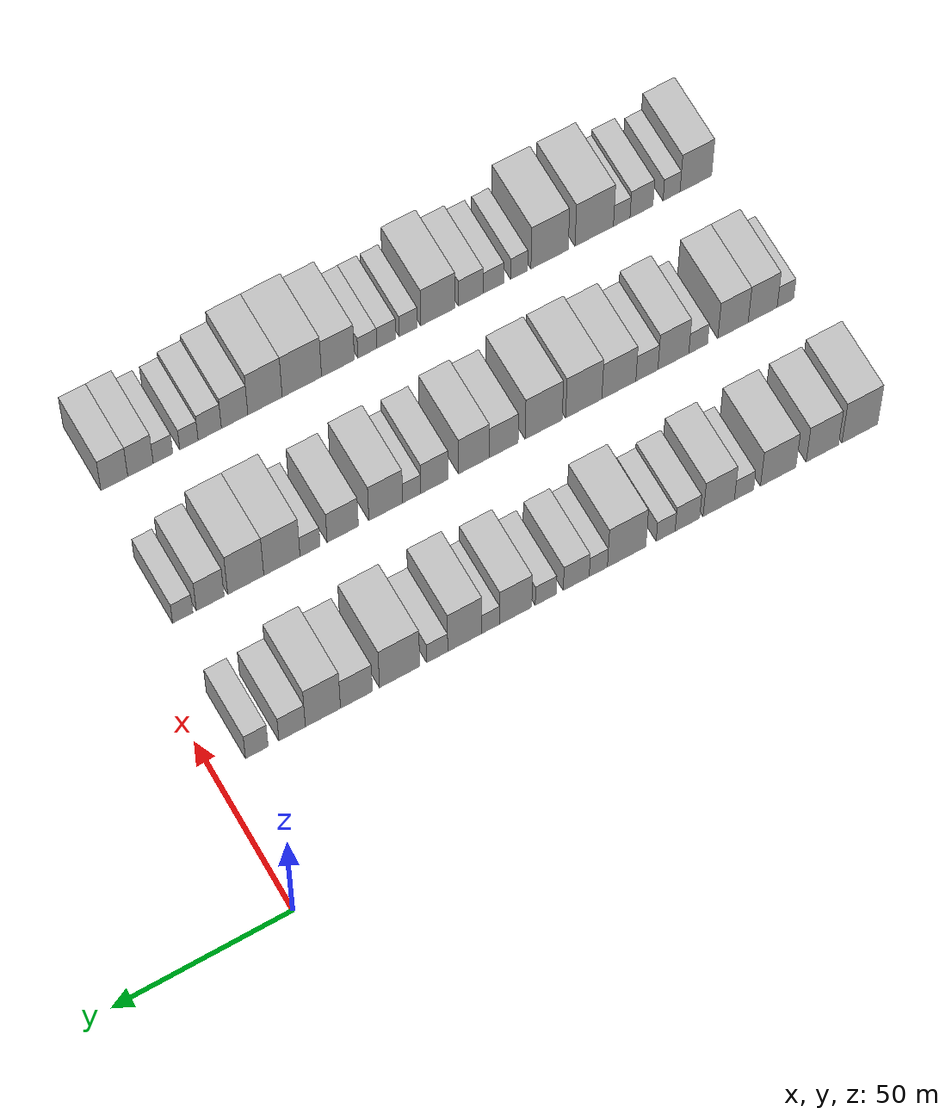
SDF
<sdf version="1.6">
 <world name="default">
  <model name="building_25">
   <static>1</static>
   <pose>50.0000 -183.6982 0 0.000000 0.000000 0.000000</pose>
   <link name="link">
    <pose>0 0 12.00 0 0 0</pose>
    <collision name="collision"><geometry><box><size>20.0000 10.4094 24.0000</size></box></geometry></collision>
    <visual name="visual">
     <cast_shadows>0</cast_shadows>
     <geometry><box><size>20.0000 10.4094 24.0000</size></box></geometry>
     <material>
      <script>
       <uri>model://HANNAS_wall/materials/scripts</uri>
       <uri>model://HANNAS_wall/materials/textures</uri>
       <name>vrc/HANNAS_wall</name>
      </script>
     </material>
    </visual>
   </link>
  </model>
  <model name="building_26">
   <static>1</static>
   <pose>50.0000 -172.7944 0 0.000000 0.000000 0.000000</pose>
   <link name="link">
    <pose>0 0 10.50 0 0 0</pose>
    <collision name="collision"><geometry><box><size>20.0000 9.3983 21.0000</size></box></geometry></collision>
    <visual name="visual">
     <cast_shadows>0</cast_shadows>
     <geometry><box><size>20.0000 9.3983 21.0000</size></box></geometry>
     <material>
      <script>
       <uri>model://HANNAS_wall/materials/scripts</uri>
       <uri>model://HANNAS_wall/materials/textures</uri>
       <name>vrc/HANNAS_wall</name>
      </script>
     </material>
    </visual>
   </link>
  </model>
  <model name="building_27">
   <static>1</static>
   <pose>50.0000 -159.9652 0 0.000000 0.000000 0.000000</pose>
   <link name="link">
    <pose>0 0 10.50 0 0 0</pose>
    <collision name="collision"><geometry><box><size>20.0000 10.2600 21.0000</size></box></geometry></collision>
    <visual name="visual">
     <cast_shadows>0</cast_shadows>
     <geometry><box><size>20.0000 10.2600 21.0000</size></box></geometry>
     <material>
      <script>
       <uri>model://HANNAS_wall/materials/scripts</uri>
       <uri>model://HANNAS_wall/materials/textures</uri>
       <name>vrc/HANNAS_wall</name>
      </script>
     </material>
    </visual>
   </link>
  </model>
  <model name="building_28">
   <static>1</static>
   <pose>50.0000 -150.0657 0 0.000000 0.000000 0.000000</pose>
   <link name="link">
    <pose>0 0 6.00 0 0 0</pose>
    <collision name="collision"><geometry><box><size>20.0000 5.5390 12.0000</size></box></geometry></collision>
    <visual name="visual">
     <cast_shadows>0</cast_shadows>
     <geometry><box><size>20.0000 5.5390 12.0000</size></box></geometry>
     <material>
      <script>
       <uri>model://HANNAS_wall/materials/scripts</uri>
       <uri>model://HANNAS_wall/materials/textures</uri>
       <name>vrc/HANNAS_wall</name>
      </script>
     </material>
    </visual>
   </link>
  </model>
  <model name="building_29">
   <static>1</static>
   <pose>50.0000 -142.7747 0 0.000000 0.000000 0.000000</pose>
   <link name="link">
    <pose>0 0 10.50 0 0 0</pose>
    <collision name="collision"><geometry><box><size>20.0000 9.0430 21.0000</size></box></geometry></collision>
    <visual name="visual">
     <cast_shadows>0</cast_shadows>
     <geometry><box><size>20.0000 9.0430 21.0000</size></box></geometry>
     <material>
      <script>
       <uri>model://HANNAS_wall/materials/scripts</uri>
       <uri>model://HANNAS_wall/materials/textures</uri>
       <name>vrc/HANNAS_wall</name>
      </script>
     </material>
    </visual>
   </link>
  </model>
  <model name="building_30">
   <static>1</static>
   <pose>50.0000 -133.7308 0 0.000000 0.000000 0.000000</pose>
   <link name="link">
    <pose>0 0 7.50 0 0 0</pose>
    <collision name="collision"><geometry><box><size>20.0000 7.0449 15.0000</size></box></geometry></collision>
    <visual name="visual">
     <cast_shadows>0</cast_shadows>
     <geometry><box><size>20.0000 7.0449 15.0000</size></box></geometry>
     <material>
      <script>
       <uri>model://HANNAS_wall/materials/scripts</uri>
       <uri>model://HANNAS_wall/materials/textures</uri>
       <name>vrc/HANNAS_wall</name>
      </script>
     </material>
    </visual>
   </link>
  </model>
  <model name="building_31">
   <static>1</static>
   <pose>50.0000 -127.4905 0 0.000000 0.000000 0.000000</pose>
   <link name="link">
    <pose>0 0 6.00 0 0 0</pose>
    <collision name="collision"><geometry><box><size>20.0000 5.4356 12.0000</size></box></geometry></collision>
    <visual name="visual">
     <cast_shadows>0</cast_shadows>
     <geometry><box><size>20.0000 5.4356 12.0000</size></box></geometry>
     <material>
      <script>
       <uri>model://HANNAS_wall/materials/scripts</uri>
       <uri>model://HANNAS_wall/materials/textures</uri>
       <name>vrc/HANNAS_wall</name>
      </script>
     </material>
    </visual>
   </link>
  </model>
  <model name="building_32">
   <static>1</static>
   <pose>50.0000 -116.2750 0 0.000000 0.000000 0.000000</pose>
   <link name="link">
    <pose>0 0 12.00 0 0 0</pose>
    <collision name="collision"><geometry><box><size>20.0000 10.9953 24.0000</size></box></geometry></collision>
    <visual name="visual">
     <cast_shadows>0</cast_shadows>
     <geometry><box><size>20.0000 10.9953 24.0000</size></box></geometry>
     <material>
      <script>
       <uri>model://HANNAS_wall/materials/scripts</uri>
       <uri>model://HANNAS_wall/materials/textures</uri>
       <name>vrc/HANNAS_wall</name>
      </script>
     </material>
    </visual>
   </link>
  </model>
  <model name="building_33">
   <static>1</static>
   <pose>50.0000 -108.1830 0 0.000000 0.000000 0.000000</pose>
   <link name="link">
    <pose>0 0 6.00 0 0 0</pose>
    <collision name="collision"><geometry><box><size>20.0000 5.1889 12.0000</size></box></geometry></collision>
    <visual name="visual">
     <cast_shadows>0</cast_shadows>
     <geometry><box><size>20.0000 5.1889 12.0000</size></box></geometry>
     <material>
      <script>
       <uri>model://HANNAS_wall/materials/scripts</uri>
       <uri>model://HANNAS_wall/materials/textures</uri>
       <name>vrc/HANNAS_wall</name>
      </script>
     </material>
    </visual>
   </link>
  </model>
  <model name="building_34">
   <static>1</static>
   <pose>50.0000 -101.8819 0 0.000000 0.000000 0.000000</pose>
   <link name="link">
    <pose>0 0 7.50 0 0 0</pose>
    <collision name="collision"><geometry><box><size>20.0000 7.4133 15.0000</size></box></geometry></collision>
    <visual name="visual">
     <cast_shadows>0</cast_shadows>
     <geometry><box><size>20.0000 7.4133 15.0000</size></box></geometry>
     <material>
      <script>
       <uri>model://HANNAS_wall/materials/scripts</uri>
       <uri>model://HANNAS_wall/materials/textures</uri>
       <name>vrc/HANNAS_wall</name>
      </script>
     </material>
    </visual>
   </link>
  </model>
  <model name="building_35">
   <static>1</static>
   <pose>50.0000 -93.1847 0 0.000000 0.000000 0.000000</pose>
   <link name="link">
    <pose>0 0 6.00 0 0 0</pose>
    <collision name="collision"><geometry><box><size>20.0000 5.9812 12.0000</size></box></geometry></collision>
    <visual name="visual">
     <cast_shadows>0</cast_shadows>
     <geometry><box><size>20.0000 5.9812 12.0000</size></box></geometry>
     <material>
      <script>
       <uri>model://HANNAS_wall/materials/scripts</uri>
       <uri>model://HANNAS_wall/materials/textures</uri>
       <name>vrc/HANNAS_wall</name>
      </script>
     </material>
    </visual>
   </link>
  </model>
  <model name="building_36">
   <static>1</static>
   <pose>50.0000 -84.6144 0 0.000000 0.000000 0.000000</pose>
   <link name="link">
    <pose>0 0 10.50 0 0 0</pose>
    <collision name="collision"><geometry><box><size>20.0000 9.1593 21.0000</size></box></geometry></collision>
    <visual name="visual">
     <cast_shadows>0</cast_shadows>
     <geometry><box><size>20.0000 9.1593 21.0000</size></box></geometry>
     <material>
      <script>
       <uri>model://HANNAS_wall/materials/scripts</uri>
       <uri>model://HANNAS_wall/materials/textures</uri>
       <name>vrc/HANNAS_wall</name>
      </script>
     </material>
    </visual>
   </link>
  </model>
  <model name="building_37">
   <static>1</static>
   <pose>50.0000 -77.5212 0 0.000000 0.000000 0.000000</pose>
   <link name="link">
    <pose>0 0 6.00 0 0 0</pose>
    <collision name="collision"><geometry><box><size>20.0000 5.0271 12.0000</size></box></geometry></collision>
    <visual name="visual">
     <cast_shadows>0</cast_shadows>
     <geometry><box><size>20.0000 5.0271 12.0000</size></box></geometry>
     <material>
      <script>
       <uri>model://HANNAS_wall/materials/scripts</uri>
       <uri>model://HANNAS_wall/materials/textures</uri>
       <name>vrc/HANNAS_wall</name>
      </script>
     </material>
    </visual>
   </link>
  </model>
  <model name="building_38">
   <static>1</static>
   <pose>50.0000 -70.1932 0 0.000000 0.000000 0.000000</pose>
   <link name="link">
    <pose>0 0 12.00 0 0 0</pose>
    <collision name="collision"><geometry><box><size>20.0000 9.6289 24.0000</size></box></geometry></collision>
    <visual name="visual">
     <cast_shadows>0</cast_shadows>
     <geometry><box><size>20.0000 9.6289 24.0000</size></box></geometry>
     <material>
      <script>
       <uri>model://HANNAS_wall/materials/scripts</uri>
       <uri>model://HANNAS_wall/materials/textures</uri>
       <name>vrc/HANNAS_wall</name>
      </script>
     </material>
    </visual>
   </link>
  </model>
  <model name="building_39">
   <static>1</static>
   <pose>50.0000 -62.4221 0 0.000000 0.000000 0.000000</pose>
   <link name="link">
    <pose>0 0 6.00 0 0 0</pose>
    <collision name="collision"><geometry><box><size>20.0000 5.9132 12.0000</size></box></geometry></collision>
    <visual name="visual">
     <cast_shadows>0</cast_shadows>
     <geometry><box><size>20.0000 5.9132 12.0000</size></box></geometry>
     <material>
      <script>
       <uri>model://HANNAS_wall/materials/scripts</uri>
       <uri>model://HANNAS_wall/materials/textures</uri>
       <name>vrc/HANNAS_wall</name>
      </script>
     </material>
    </visual>
   </link>
  </model>
  <model name="building_40">
   <static>1</static>
   <pose>50.0000 -51.8165 0 0.000000 0.000000 0.000000</pose>
   <link name="link">
    <pose>0 0 12.00 0 0 0</pose>
    <collision name="collision"><geometry><box><size>20.0000 11.2980 24.0000</size></box></geometry></collision>
    <visual name="visual">
     <cast_shadows>0</cast_shadows>
     <geometry><box><size>20.0000 11.2980 24.0000</size></box></geometry>
     <material>
      <script>
       <uri>model://HANNAS_wall/materials/scripts</uri>
       <uri>model://HANNAS_wall/materials/textures</uri>
       <name>vrc/HANNAS_wall</name>
      </script>
     </material>
    </visual>
   </link>
  </model>
  <model name="building_41">
   <static>1</static>
   <pose>50.0000 -39.6942 0 0.000000 0.000000 0.000000</pose>
   <link name="link">
    <pose>0 0 9.00 0 0 0</pose>
    <collision name="collision"><geometry><box><size>20.0000 8.9466 18.0000</size></box></geometry></collision>
    <visual name="visual">
     <cast_shadows>0</cast_shadows>
     <geometry><box><size>20.0000 8.9466 18.0000</size></box></geometry>
     <material>
      <script>
       <uri>model://HANNAS_wall/materials/scripts</uri>
       <uri>model://HANNAS_wall/materials/textures</uri>
       <name>vrc/HANNAS_wall</name>
      </script>
     </material>
    </visual>
   </link>
  </model>
  <model name="building_42">
   <static>1</static>
   <pose>50.0000 -30.3065 0 0.000000 0.000000 0.000000</pose>
   <link name="link">
    <pose>0 0 12.00 0 0 0</pose>
    <collision name="collision"><geometry><box><size>20.0000 9.8288 24.0000</size></box></geometry></collision>
    <visual name="visual">
     <cast_shadows>0</cast_shadows>
     <geometry><box><size>20.0000 9.8288 24.0000</size></box></geometry>
     <material>
      <script>
       <uri>model://HANNAS_wall/materials/scripts</uri>
       <uri>model://HANNAS_wall/materials/textures</uri>
       <name>vrc/HANNAS_wall</name>
      </script>
     </material>
    </visual>
   </link>
  </model>
  <model name="building_43">
   <static>1</static>
   <pose>50.0000 -21.6989 0 0.000000 0.000000 0.000000</pose>
   <link name="link">
    <pose>0 0 7.50 0 0 0</pose>
    <collision name="collision"><geometry><box><size>20.0000 7.3866 15.0000</size></box></geometry></collision>
    <visual name="visual">
     <cast_shadows>0</cast_shadows>
     <geometry><box><size>20.0000 7.3866 15.0000</size></box></geometry>
     <material>
      <script>
       <uri>model://HANNAS_wall/materials/scripts</uri>
       <uri>model://HANNAS_wall/materials/textures</uri>
       <name>vrc/HANNAS_wall</name>
      </script>
     </material>
    </visual>
   </link>
  </model>
  <model name="building_44">
   <static>1</static>
   <pose>50.0000 -11.8551 0 0.000000 0.000000 0.000000</pose>
   <link name="link">
    <pose>0 0 7.50 0 0 0</pose>
    <collision name="collision"><geometry><box><size>20.0000 6.3010 15.0000</size></box></geometry></collision>
    <visual name="visual">
     <cast_shadows>0</cast_shadows>
     <geometry><box><size>20.0000 6.3010 15.0000</size></box></geometry>
     <material>
      <script>
       <uri>model://HANNAS_wall/materials/scripts</uri>
       <uri>model://HANNAS_wall/materials/textures</uri>
       <name>vrc/HANNAS_wall</name>
      </script>
     </material>
    </visual>
   </link>
  </model>
  <model name="building_106">
   <static>1</static>
   <pose>90.0000 -185.9245 0 0.000000 0.000000 0.000000</pose>
   <link name="link">
    <pose>0 0 6.00 0 0 0</pose>
    <collision name="collision"><geometry><box><size>20.0000 4.8356 12.0000</size></box></geometry></collision>
    <visual name="visual">
     <cast_shadows>0</cast_shadows>
     <geometry><box><size>20.0000 4.8356 12.0000</size></box></geometry>
     <material>
      <script>
       <uri>model://HANNAS_wall/materials/scripts</uri>
       <uri>model://HANNAS_wall/materials/textures</uri>
       <name>vrc/HANNAS_wall</name>
      </script>
     </material>
    </visual>
   </link>
  </model>
  <model name="building_107">
   <static>1</static>
   <pose>90.0000 -179.2603 0 0.000000 0.000000 0.000000</pose>
   <link name="link">
    <pose>0 0 10.50 0 0 0</pose>
    <collision name="collision"><geometry><box><size>20.0000 8.4927 21.0000</size></box></geometry></collision>
    <visual name="visual">
     <cast_shadows>0</cast_shadows>
     <geometry><box><size>20.0000 8.4927 21.0000</size></box></geometry>
     <material>
      <script>
       <uri>model://HANNAS_wall/materials/scripts</uri>
       <uri>model://HANNAS_wall/materials/textures</uri>
       <name>vrc/HANNAS_wall</name>
      </script>
     </material>
    </visual>
   </link>
  </model>
  <model name="building_108">
   <static>1</static>
   <pose>90.0000 -170.5724 0 0.000000 0.000000 0.000000</pose>
   <link name="link">
    <pose>0 0 10.50 0 0 0</pose>
    <collision name="collision"><geometry><box><size>20.0000 8.8831 21.0000</size></box></geometry></collision>
    <visual name="visual">
     <cast_shadows>0</cast_shadows>
     <geometry><box><size>20.0000 8.8831 21.0000</size></box></geometry>
     <material>
      <script>
       <uri>model://HANNAS_wall/materials/scripts</uri>
       <uri>model://HANNAS_wall/materials/textures</uri>
       <name>vrc/HANNAS_wall</name>
      </script>
     </material>
    </visual>
   </link>
  </model>
  <model name="building_109">
   <static>1</static>
   <pose>90.0000 -160.3916 0 0.000000 0.000000 0.000000</pose>
   <link name="link">
    <pose>0 0 6.00 0 0 0</pose>
    <collision name="collision"><geometry><box><size>20.0000 5.4785 12.0000</size></box></geometry></collision>
    <visual name="visual">
     <cast_shadows>0</cast_shadows>
     <geometry><box><size>20.0000 5.4785 12.0000</size></box></geometry>
     <material>
      <script>
       <uri>model://HANNAS_wall/materials/scripts</uri>
       <uri>model://HANNAS_wall/materials/textures</uri>
       <name>vrc/HANNAS_wall</name>
      </script>
     </material>
    </visual>
   </link>
  </model>
  <model name="building_110">
   <static>1</static>
   <pose>90.0000 -153.1517 0 0.000000 0.000000 0.000000</pose>
   <link name="link">
    <pose>0 0 10.50 0 0 0</pose>
    <collision name="collision"><geometry><box><size>20.0000 9.0015 21.0000</size></box></geometry></collision>
    <visual name="visual">
     <cast_shadows>0</cast_shadows>
     <geometry><box><size>20.0000 9.0015 21.0000</size></box></geometry>
     <material>
      <script>
       <uri>model://HANNAS_wall/materials/scripts</uri>
       <uri>model://HANNAS_wall/materials/textures</uri>
       <name>vrc/HANNAS_wall</name>
      </script>
     </material>
    </visual>
   </link>
  </model>
  <model name="building_111">
   <static>1</static>
   <pose>90.0000 -145.4465 0 0.000000 0.000000 0.000000</pose>
   <link name="link">
    <pose>0 0 7.50 0 0 0</pose>
    <collision name="collision"><geometry><box><size>20.0000 6.4088 15.0000</size></box></geometry></collision>
    <visual name="visual">
     <cast_shadows>0</cast_shadows>
     <geometry><box><size>20.0000 6.4088 15.0000</size></box></geometry>
     <material>
      <script>
       <uri>model://HANNAS_wall/materials/scripts</uri>
       <uri>model://HANNAS_wall/materials/textures</uri>
       <name>vrc/HANNAS_wall</name>
      </script>
     </material>
    </visual>
   </link>
  </model>
  <model name="building_112">
   <static>1</static>
   <pose>90.0000 -137.3129 0 0.000000 0.000000 0.000000</pose>
   <link name="link">
    <pose>0 0 10.50 0 0 0</pose>
    <collision name="collision"><geometry><box><size>20.0000 9.8584 21.0000</size></box></geometry></collision>
    <visual name="visual">
     <cast_shadows>0</cast_shadows>
     <geometry><box><size>20.0000 9.8584 21.0000</size></box></geometry>
     <material>
      <script>
       <uri>model://HANNAS_wall/materials/scripts</uri>
       <uri>model://HANNAS_wall/materials/textures</uri>
       <name>vrc/HANNAS_wall</name>
      </script>
     </material>
    </visual>
   </link>
  </model>
  <model name="building_113">
   <static>1</static>
   <pose>90.0000 -127.1425 0 0.000000 0.000000 0.000000</pose>
   <link name="link">
    <pose>0 0 12.00 0 0 0</pose>
    <collision name="collision"><geometry><box><size>20.0000 10.4826 24.0000</size></box></geometry></collision>
    <visual name="visual">
     <cast_shadows>0</cast_shadows>
     <geometry><box><size>20.0000 10.4826 24.0000</size></box></geometry>
     <material>
      <script>
       <uri>model://HANNAS_wall/materials/scripts</uri>
       <uri>model://HANNAS_wall/materials/textures</uri>
       <name>vrc/HANNAS_wall</name>
      </script>
     </material>
    </visual>
   </link>
  </model>
  <model name="building_114">
   <static>1</static>
   <pose>90.0000 -115.5559 0 0.000000 0.000000 0.000000</pose>
   <link name="link">
    <pose>0 0 12.00 0 0 0</pose>
    <collision name="collision"><geometry><box><size>20.0000 10.6905 24.0000</size></box></geometry></collision>
    <visual name="visual">
     <cast_shadows>0</cast_shadows>
     <geometry><box><size>20.0000 10.6905 24.0000</size></box></geometry>
     <material>
      <script>
       <uri>model://HANNAS_wall/materials/scripts</uri>
       <uri>model://HANNAS_wall/materials/textures</uri>
       <name>vrc/HANNAS_wall</name>
      </script>
     </material>
    </visual>
   </link>
  </model>
  <model name="building_115">
   <static>1</static>
   <pose>90.0000 -104.0664 0 0.000000 0.000000 0.000000</pose>
   <link name="link">
    <pose>0 0 9.00 0 0 0</pose>
    <collision name="collision"><geometry><box><size>20.0000 8.2887 18.0000</size></box></geometry></collision>
    <visual name="visual">
     <cast_shadows>0</cast_shadows>
     <geometry><box><size>20.0000 8.2887 18.0000</size></box></geometry>
     <material>
      <script>
       <uri>model://HANNAS_wall/materials/scripts</uri>
       <uri>model://HANNAS_wall/materials/textures</uri>
       <name>vrc/HANNAS_wall</name>
      </script>
     </material>
    </visual>
   </link>
  </model>
  <model name="building_116">
   <static>1</static>
   <pose>90.0000 -95.5177 0 0.000000 0.000000 0.000000</pose>
   <link name="link">
    <pose>0 0 10.50 0 0 0</pose>
    <collision name="collision"><geometry><box><size>20.0000 8.8087 21.0000</size></box></geometry></collision>
    <visual name="visual">
     <cast_shadows>0</cast_shadows>
     <geometry><box><size>20.0000 8.8087 21.0000</size></box></geometry>
     <material>
      <script>
       <uri>model://HANNAS_wall/materials/scripts</uri>
       <uri>model://HANNAS_wall/materials/textures</uri>
       <name>vrc/HANNAS_wall</name>
      </script>
     </material>
    </visual>
   </link>
  </model>
  <model name="building_117">
   <static>1</static>
   <pose>90.0000 -84.2253 0 0.000000 0.000000 0.000000</pose>
   <link name="link">
    <pose>0 0 9.00 0 0 0</pose>
    <collision name="collision"><geometry><box><size>20.0000 7.7761 18.0000</size></box></geometry></collision>
    <visual name="visual">
     <cast_shadows>0</cast_shadows>
     <geometry><box><size>20.0000 7.7761 18.0000</size></box></geometry>
     <material>
      <script>
       <uri>model://HANNAS_wall/materials/scripts</uri>
       <uri>model://HANNAS_wall/materials/textures</uri>
       <name>vrc/HANNAS_wall</name>
      </script>
     </material>
    </visual>
   </link>
  </model>
  <model name="building_118">
   <static>1</static>
   <pose>90.0000 -77.7504 0 0.000000 0.000000 0.000000</pose>
   <link name="link">
    <pose>0 0 6.00 0 0 0</pose>
    <collision name="collision"><geometry><box><size>20.0000 5.1737 12.0000</size></box></geometry></collision>
    <visual name="visual">
     <cast_shadows>0</cast_shadows>
     <geometry><box><size>20.0000 5.1737 12.0000</size></box></geometry>
     <material>
      <script>
       <uri>model://HANNAS_wall/materials/scripts</uri>
       <uri>model://HANNAS_wall/materials/textures</uri>
       <name>vrc/HANNAS_wall</name>
      </script>
     </material>
    </visual>
   </link>
  </model>
  <model name="building_119">
   <static>1</static>
   <pose>90.0000 -70.3456 0 0.000000 0.000000 0.000000</pose>
   <link name="link">
    <pose>0 0 10.50 0 0 0</pose>
    <collision name="collision"><geometry><box><size>20.0000 9.6360 21.0000</size></box></geometry></collision>
    <visual name="visual">
     <cast_shadows>0</cast_shadows>
     <geometry><box><size>20.0000 9.6360 21.0000</size></box></geometry>
     <material>
      <script>
       <uri>model://HANNAS_wall/materials/scripts</uri>
       <uri>model://HANNAS_wall/materials/textures</uri>
       <name>vrc/HANNAS_wall</name>
      </script>
     </material>
    </visual>
   </link>
  </model>
  <model name="building_120">
   <static>1</static>
   <pose>90.0000 -58.0974 0 0.000000 0.000000 0.000000</pose>
   <link name="link">
    <pose>0 0 9.00 0 0 0</pose>
    <collision name="collision"><geometry><box><size>20.0000 8.8603 18.0000</size></box></geometry></collision>
    <visual name="visual">
     <cast_shadows>0</cast_shadows>
     <geometry><box><size>20.0000 8.8603 18.0000</size></box></geometry>
     <material>
      <script>
       <uri>model://HANNAS_wall/materials/scripts</uri>
       <uri>model://HANNAS_wall/materials/textures</uri>
       <name>vrc/HANNAS_wall</name>
      </script>
     </material>
    </visual>
   </link>
  </model>
  <model name="building_121">
   <static>1</static>
   <pose>90.0000 -48.8310 0 0.000000 0.000000 0.000000</pose>
   <link name="link">
    <pose>0 0 6.00 0 0 0</pose>
    <collision name="collision"><geometry><box><size>20.0000 5.6724 12.0000</size></box></geometry></collision>
    <visual name="visual">
     <cast_shadows>0</cast_shadows>
     <geometry><box><size>20.0000 5.6724 12.0000</size></box></geometry>
     <material>
      <script>
       <uri>model://HANNAS_wall/materials/scripts</uri>
       <uri>model://HANNAS_wall/materials/textures</uri>
       <name>vrc/HANNAS_wall</name>
      </script>
     </material>
    </visual>
   </link>
  </model>
  <model name="building_122">
   <static>1</static>
   <pose>90.0000 -40.8787 0 0.000000 0.000000 0.000000</pose>
   <link name="link">
    <pose>0 0 12.00 0 0 0</pose>
    <collision name="collision"><geometry><box><size>20.0000 10.2322 24.0000</size></box></geometry></collision>
    <visual name="visual">
     <cast_shadows>0</cast_shadows>
     <geometry><box><size>20.0000 10.2322 24.0000</size></box></geometry>
     <material>
      <script>
       <uri>model://HANNAS_wall/materials/scripts</uri>
       <uri>model://HANNAS_wall/materials/textures</uri>
       <name>vrc/HANNAS_wall</name>
      </script>
     </material>
    </visual>
   </link>
  </model>
  <model name="building_123">
   <static>1</static>
   <pose>90.0000 -30.6779 0 0.000000 0.000000 0.000000</pose>
   <link name="link">
    <pose>0 0 12.00 0 0 0</pose>
    <collision name="collision"><geometry><box><size>20.0000 10.1693 24.0000</size></box></geometry></collision>
    <visual name="visual">
     <cast_shadows>0</cast_shadows>
     <geometry><box><size>20.0000 10.1693 24.0000</size></box></geometry>
     <material>
      <script>
       <uri>model://HANNAS_wall/materials/scripts</uri>
       <uri>model://HANNAS_wall/materials/textures</uri>
       <name>vrc/HANNAS_wall</name>
      </script>
     </material>
    </visual>
   </link>
  </model>
  <model name="building_124">
   <static>1</static>
   <pose>90.0000 -20.6944 0 0.000000 0.000000 0.000000</pose>
   <link name="link">
    <pose>0 0 9.00 0 0 0</pose>
    <collision name="collision"><geometry><box><size>20.0000 7.7977 18.0000</size></box></geometry></collision>
    <visual name="visual">
     <cast_shadows>0</cast_shadows>
     <geometry><box><size>20.0000 7.7977 18.0000</size></box></geometry>
     <material>
      <script>
       <uri>model://HANNAS_wall/materials/scripts</uri>
       <uri>model://HANNAS_wall/materials/textures</uri>
       <name>vrc/HANNAS_wall</name>
      </script>
     </material>
    </visual>
   </link>
  </model>
  <model name="building_125">
   <static>1</static>
   <pose>90.0000 -12.9630 0 0.000000 0.000000 0.000000</pose>
   <link name="link">
    <pose>0 0 6.00 0 0 0</pose>
    <collision name="collision"><geometry><box><size>20.0000 5.6653 12.0000</size></box></geometry></collision>
    <visual name="visual">
     <cast_shadows>0</cast_shadows>
     <geometry><box><size>20.0000 5.6653 12.0000</size></box></geometry>
     <material>
      <script>
       <uri>model://HANNAS_wall/materials/scripts</uri>
       <uri>model://HANNAS_wall/materials/textures</uri>
       <name>vrc/HANNAS_wall</name>
      </script>
     </material>
    </visual>
   </link>
  </model>
  <model name="building_183">
   <static>1</static>
   <pose>130.0000 -183.2437 0 0.000000 0.000000 0.000000</pose>
   <link name="link">
    <pose>0 0 10.50 0 0 0</pose>
    <collision name="collision"><geometry><box><size>20.0000 9.3417 21.0000</size></box></geometry></collision>
    <visual name="visual">
     <cast_shadows>0</cast_shadows>
     <geometry><box><size>20.0000 9.3417 21.0000</size></box></geometry>
     <material>
      <script>
       <uri>model://HANNAS_wall/materials/scripts</uri>
       <uri>model://HANNAS_wall/materials/textures</uri>
       <name>vrc/HANNAS_wall</name>
      </script>
     </material>
    </visual>
   </link>
  </model>
  <model name="building_184">
   <static>1</static>
   <pose>130.0000 -176.0783 0 0.000000 0.000000 0.000000</pose>
   <link name="link">
    <pose>0 0 6.00 0 0 0</pose>
    <collision name="collision"><geometry><box><size>20.0000 4.9893 12.0000</size></box></geometry></collision>
    <visual name="visual">
     <cast_shadows>0</cast_shadows>
     <geometry><box><size>20.0000 4.9893 12.0000</size></box></geometry>
     <material>
      <script>
       <uri>model://HANNAS_wall/materials/scripts</uri>
       <uri>model://HANNAS_wall/materials/textures</uri>
       <name>vrc/HANNAS_wall</name>
      </script>
     </material>
    </visual>
   </link>
  </model>
  <model name="building_185">
   <static>1</static>
   <pose>130.0000 -167.2139 0 0.000000 0.000000 0.000000</pose>
   <link name="link">
    <pose>0 0 7.50 0 0 0</pose>
    <collision name="collision"><geometry><box><size>20.0000 6.7394 15.0000</size></box></geometry></collision>
    <visual name="visual">
     <cast_shadows>0</cast_shadows>
     <geometry><box><size>20.0000 6.7394 15.0000</size></box></geometry>
     <material>
      <script>
       <uri>model://HANNAS_wall/materials/scripts</uri>
       <uri>model://HANNAS_wall/materials/textures</uri>
       <name>vrc/HANNAS_wall</name>
      </script>
     </material>
    </visual>
   </link>
  </model>
  <model name="building_186">
   <static>1</static>
   <pose>130.0000 -161.4069 0 0.000000 0.000000 0.000000</pose>
   <link name="link">
    <pose>0 0 6.00 0 0 0</pose>
    <collision name="collision"><geometry><box><size>20.0000 4.8746 12.0000</size></box></geometry></collision>
    <visual name="visual">
     <cast_shadows>0</cast_shadows>
     <geometry><box><size>20.0000 4.8746 12.0000</size></box></geometry>
     <material>
      <script>
       <uri>model://HANNAS_wall/materials/scripts</uri>
       <uri>model://HANNAS_wall/materials/textures</uri>
       <name>vrc/HANNAS_wall</name>
      </script>
     </material>
    </visual>
   </link>
  </model>
  <model name="building_187">
   <static>1</static>
   <pose>130.0000 -153.3380 0 0.000000 0.000000 0.000000</pose>
   <link name="link">
    <pose>0 0 12.00 0 0 0</pose>
    <collision name="collision"><geometry><box><size>20.0000 11.2633 24.0000</size></box></geometry></collision>
    <visual name="visual">
     <cast_shadows>0</cast_shadows>
     <geometry><box><size>20.0000 11.2633 24.0000</size></box></geometry>
     <material>
      <script>
       <uri>model://HANNAS_wall/materials/scripts</uri>
       <uri>model://HANNAS_wall/materials/textures</uri>
       <name>vrc/HANNAS_wall</name>
      </script>
     </material>
    </visual>
   </link>
  </model>
  <model name="building_188">
   <static>1</static>
   <pose>130.0000 -140.2685 0 0.000000 0.000000 0.000000</pose>
   <link name="link">
    <pose>0 0 12.00 0 0 0</pose>
    <collision name="collision"><geometry><box><size>20.0000 10.8756 24.0000</size></box></geometry></collision>
    <visual name="visual">
     <cast_shadows>0</cast_shadows>
     <geometry><box><size>20.0000 10.8756 24.0000</size></box></geometry>
     <material>
      <script>
       <uri>model://HANNAS_wall/materials/scripts</uri>
       <uri>model://HANNAS_wall/materials/textures</uri>
       <name>vrc/HANNAS_wall</name>
      </script>
     </material>
    </visual>
   </link>
  </model>
  <model name="building_189">
   <static>1</static>
   <pose>130.0000 -131.3822 0 0.000000 0.000000 0.000000</pose>
   <link name="link">
    <pose>0 0 6.00 0 0 0</pose>
    <collision name="collision"><geometry><box><size>20.0000 4.8971 12.0000</size></box></geometry></collision>
    <visual name="visual">
     <cast_shadows>0</cast_shadows>
     <geometry><box><size>20.0000 4.8971 12.0000</size></box></geometry>
     <material>
      <script>
       <uri>model://HANNAS_wall/materials/scripts</uri>
       <uri>model://HANNAS_wall/materials/textures</uri>
       <name>vrc/HANNAS_wall</name>
      </script>
     </material>
    </visual>
   </link>
  </model>
  <model name="building_190">
   <static>1</static>
   <pose>130.0000 -123.9478 0 0.000000 0.000000 0.000000</pose>
   <link name="link">
    <pose>0 0 6.00 0 0 0</pose>
    <collision name="collision"><geometry><box><size>20.0000 5.9718 12.0000</size></box></geometry></collision>
    <visual name="visual">
     <cast_shadows>0</cast_shadows>
     <geometry><box><size>20.0000 5.9718 12.0000</size></box></geometry>
     <material>
      <script>
       <uri>model://HANNAS_wall/materials/scripts</uri>
       <uri>model://HANNAS_wall/materials/textures</uri>
       <name>vrc/HANNAS_wall</name>
      </script>
     </material>
    </visual>
   </link>
  </model>
  <model name="building_191">
   <static>1</static>
   <pose>130.0000 -117.3622 0 0.000000 0.000000 0.000000</pose>
   <link name="link">
    <pose>0 0 7.50 0 0 0</pose>
    <collision name="collision"><geometry><box><size>20.0000 7.1994 15.0000</size></box></geometry></collision>
    <visual name="visual">
     <cast_shadows>0</cast_shadows>
     <geometry><box><size>20.0000 7.1994 15.0000</size></box></geometry>
     <material>
      <script>
       <uri>model://HANNAS_wall/materials/scripts</uri>
       <uri>model://HANNAS_wall/materials/textures</uri>
       <name>vrc/HANNAS_wall</name>
      </script>
     </material>
    </visual>
   </link>
  </model>
  <model name="building_192">
   <static>1</static>
   <pose>130.0000 -107.8095 0 0.000000 0.000000 0.000000</pose>
   <link name="link">
    <pose>0 0 10.50 0 0 0</pose>
    <collision name="collision"><geometry><box><size>20.0000 9.9060 21.0000</size></box></geometry></collision>
    <visual name="visual">
     <cast_shadows>0</cast_shadows>
     <geometry><box><size>20.0000 9.9060 21.0000</size></box></geometry>
     <material>
      <script>
       <uri>model://HANNAS_wall/materials/scripts</uri>
       <uri>model://HANNAS_wall/materials/textures</uri>
       <name>vrc/HANNAS_wall</name>
      </script>
     </material>
    </visual>
   </link>
  </model>
  <model name="building_193">
   <static>1</static>
   <pose>130.0000 -99.2510 0 0.000000 0.000000 0.000000</pose>
   <link name="link">
    <pose>0 0 6.00 0 0 0</pose>
    <collision name="collision"><geometry><box><size>20.0000 5.2111 12.0000</size></box></geometry></collision>
    <visual name="visual">
     <cast_shadows>0</cast_shadows>
     <geometry><box><size>20.0000 5.2111 12.0000</size></box></geometry>
     <material>
      <script>
       <uri>model://HANNAS_wall/materials/scripts</uri>
       <uri>model://HANNAS_wall/materials/textures</uri>
       <name>vrc/HANNAS_wall</name>
      </script>
     </material>
    </visual>
   </link>
  </model>
  <model name="building_194">
   <static>1</static>
   <pose>130.0000 -92.9142 0 0.000000 0.000000 0.000000</pose>
   <link name="link">
    <pose>0 0 6.00 0 0 0</pose>
    <collision name="collision"><geometry><box><size>20.0000 5.4625 12.0000</size></box></geometry></collision>
    <visual name="visual">
     <cast_shadows>0</cast_shadows>
     <geometry><box><size>20.0000 5.4625 12.0000</size></box></geometry>
     <material>
      <script>
       <uri>model://HANNAS_wall/materials/scripts</uri>
       <uri>model://HANNAS_wall/materials/textures</uri>
       <name>vrc/HANNAS_wall</name>
      </script>
     </material>
    </visual>
   </link>
  </model>
  <model name="building_195">
   <static>1</static>
   <pose>130.0000 -87.4469 0 0.000000 0.000000 0.000000</pose>
   <link name="link">
    <pose>0 0 6.00 0 0 0</pose>
    <collision name="collision"><geometry><box><size>20.0000 5.4720 12.0000</size></box></geometry></collision>
    <visual name="visual">
     <cast_shadows>0</cast_shadows>
     <geometry><box><size>20.0000 5.4720 12.0000</size></box></geometry>
     <material>
      <script>
       <uri>model://HANNAS_wall/materials/scripts</uri>
       <uri>model://HANNAS_wall/materials/textures</uri>
       <name>vrc/HANNAS_wall</name>
      </script>
     </material>
    </visual>
   </link>
  </model>
  <model name="building_196">
   <static>1</static>
   <pose>130.0000 -78.9801 0 0.000000 0.000000 0.000000</pose>
   <link name="link">
    <pose>0 0 10.50 0 0 0</pose>
    <collision name="collision"><geometry><box><size>20.0000 9.4615 21.0000</size></box></geometry></collision>
    <visual name="visual">
     <cast_shadows>0</cast_shadows>
     <geometry><box><size>20.0000 9.4615 21.0000</size></box></geometry>
     <material>
      <script>
       <uri>model://HANNAS_wall/materials/scripts</uri>
       <uri>model://HANNAS_wall/materials/textures</uri>
       <name>vrc/HANNAS_wall</name>
      </script>
     </material>
    </visual>
   </link>
  </model>
  <model name="building_197">
   <static>1</static>
   <pose>130.0000 -68.6174 0 0.000000 0.000000 0.000000</pose>
   <link name="link">
    <pose>0 0 12.00 0 0 0</pose>
    <collision name="collision"><geometry><box><size>20.0000 11.2640 24.0000</size></box></geometry></collision>
    <visual name="visual">
     <cast_shadows>0</cast_shadows>
     <geometry><box><size>20.0000 11.2640 24.0000</size></box></geometry>
     <material>
      <script>
       <uri>model://HANNAS_wall/materials/scripts</uri>
       <uri>model://HANNAS_wall/materials/textures</uri>
       <name>vrc/HANNAS_wall</name>
      </script>
     </material>
    </visual>
   </link>
  </model>
  <model name="building_198">
   <static>1</static>
   <pose>130.0000 -58.0772 0 0.000000 0.000000 0.000000</pose>
   <link name="link">
    <pose>0 0 12.00 0 0 0</pose>
    <collision name="collision"><geometry><box><size>20.0000 9.8164 24.0000</size></box></geometry></collision>
    <visual name="visual">
     <cast_shadows>0</cast_shadows>
     <geometry><box><size>20.0000 9.8164 24.0000</size></box></geometry>
     <material>
      <script>
       <uri>model://HANNAS_wall/materials/scripts</uri>
       <uri>model://HANNAS_wall/materials/textures</uri>
       <name>vrc/HANNAS_wall</name>
      </script>
     </material>
    </visual>
   </link>
  </model>
  <model name="building_199">
   <static>1</static>
   <pose>130.0000 -49.3986 0 0.000000 0.000000 0.000000</pose>
   <link name="link">
    <pose>0 0 9.00 0 0 0</pose>
    <collision name="collision"><geometry><box><size>20.0000 7.5407 18.0000</size></box></geometry></collision>
    <visual name="visual">
     <cast_shadows>0</cast_shadows>
     <geometry><box><size>20.0000 7.5407 18.0000</size></box></geometry>
     <material>
      <script>
       <uri>model://HANNAS_wall/materials/scripts</uri>
       <uri>model://HANNAS_wall/materials/textures</uri>
       <name>vrc/HANNAS_wall</name>
      </script>
     </material>
    </visual>
   </link>
  </model>
  <model name="building_200">
   <static>1</static>
   <pose>130.0000 -42.3165 0 0.000000 0.000000 0.000000</pose>
   <link name="link">
    <pose>0 0 7.50 0 0 0</pose>
    <collision name="collision"><geometry><box><size>20.0000 6.6236 15.0000</size></box></geometry></collision>
    <visual name="visual">
     <cast_shadows>0</cast_shadows>
     <geometry><box><size>20.0000 6.6236 15.0000</size></box></geometry>
     <material>
      <script>
       <uri>model://HANNAS_wall/materials/scripts</uri>
       <uri>model://HANNAS_wall/materials/textures</uri>
       <name>vrc/HANNAS_wall</name>
      </script>
     </material>
    </visual>
   </link>
  </model>
  <model name="building_201">
   <static>1</static>
   <pose>130.0000 -36.4114 0 0.000000 0.000000 0.000000</pose>
   <link name="link">
    <pose>0 0 6.00 0 0 0</pose>
    <collision name="collision"><geometry><box><size>20.0000 5.1865 12.0000</size></box></geometry></collision>
    <visual name="visual">
     <cast_shadows>0</cast_shadows>
     <geometry><box><size>20.0000 5.1865 12.0000</size></box></geometry>
     <material>
      <script>
       <uri>model://HANNAS_wall/materials/scripts</uri>
       <uri>model://HANNAS_wall/materials/textures</uri>
       <name>vrc/HANNAS_wall</name>
      </script>
     </material>
    </visual>
   </link>
  </model>
  <model name="building_202">
   <static>1</static>
   <pose>130.0000 -29.0500 0 0.000000 0.000000 0.000000</pose>
   <link name="link">
    <pose>0 0 6.00 0 0 0</pose>
    <collision name="collision"><geometry><box><size>20.0000 5.5363 12.0000</size></box></geometry></collision>
    <visual name="visual">
     <cast_shadows>0</cast_shadows>
     <geometry><box><size>20.0000 5.5363 12.0000</size></box></geometry>
     <material>
      <script>
       <uri>model://HANNAS_wall/materials/scripts</uri>
       <uri>model://HANNAS_wall/materials/textures</uri>
       <name>vrc/HANNAS_wall</name>
      </script>
     </material>
    </visual>
   </link>
  </model>
  <model name="building_203">
   <static>1</static>
   <pose>130.0000 -22.6785 0 0.000000 0.000000 0.000000</pose>
   <link name="link">
    <pose>0 0 9.00 0 0 0</pose>
    <collision name="collision"><geometry><box><size>20.0000 7.2068 18.0000</size></box></geometry></collision>
    <visual name="visual">
     <cast_shadows>0</cast_shadows>
     <geometry><box><size>20.0000 7.2068 18.0000</size></box></geometry>
     <material>
      <script>
       <uri>model://HANNAS_wall/materials/scripts</uri>
       <uri>model://HANNAS_wall/materials/textures</uri>
       <name>vrc/HANNAS_wall</name>
      </script>
     </material>
    </visual>
   </link>
  </model>
  <model name="building_204">
   <static>1</static>
   <pose>130.0000 -15.2721 0 0.000000 0.000000 0.000000</pose>
   <link name="link">
    <pose>0 0 9.00 0 0 0</pose>
    <collision name="collision"><geometry><box><size>20.0000 7.6059 18.0000</size></box></geometry></collision>
    <visual name="visual">
     <cast_shadows>0</cast_shadows>
     <geometry><box><size>20.0000 7.6059 18.0000</size></box></geometry>
     <material>
      <script>
       <uri>model://HANNAS_wall/materials/scripts</uri>
       <uri>model://HANNAS_wall/materials/textures</uri>
       <name>vrc/HANNAS_wall</name>
      </script>
     </material>
    </visual>
   </link>
  </model>
 </world>
</sdf>
